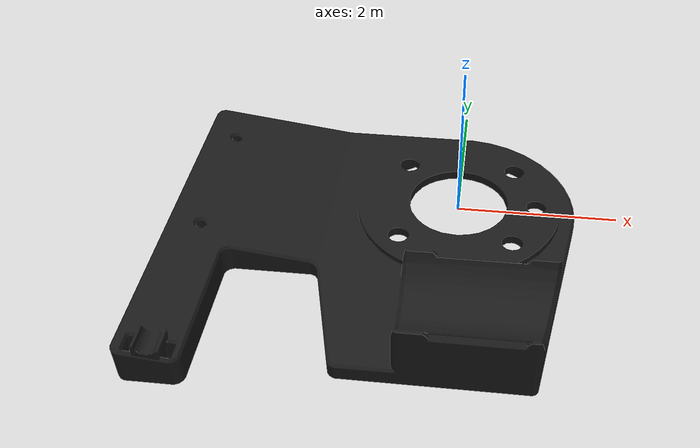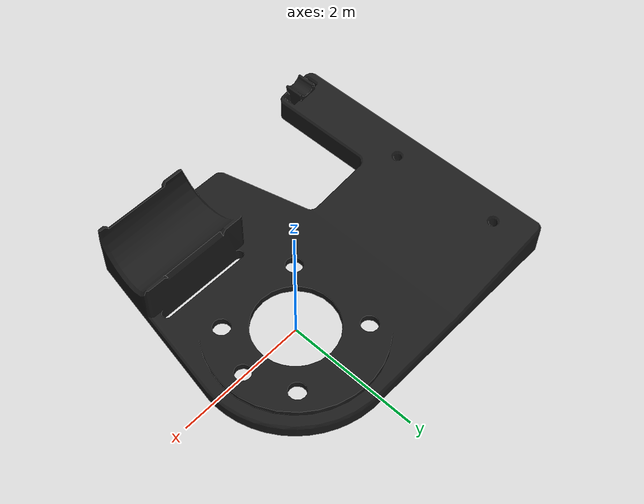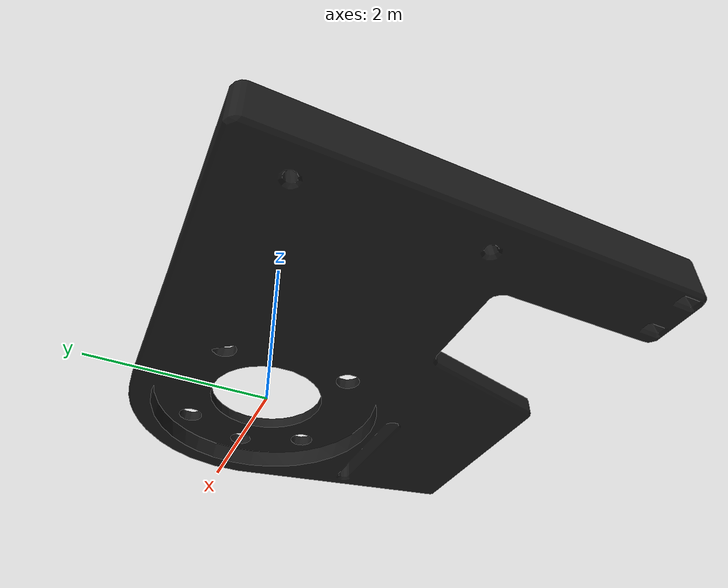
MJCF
<mujoco model="ich-005_realsense_cable_mount_corr">
  <default>
    <default class="visual">
      <geom group="2" type="mesh" contype="0" conaffinity="0"/>
    </default>
    <default class="collision">
      <geom group="3" type="mesh"/>
    </default>
  </default>
  <asset>
    <material name="mtl_ich-005_realsense_cable_mount_corr" specular="0.20000000000000004" shininess="1.0" rgba="0.10196078 0.10196078 0.10196078 1.0"/>
    <mesh file="ich-005_realsense_cable_mount_corr.obj"/>
  </asset>
  <worldbody>
    <body name="ich-005_realsense_cable_mount_corr">
      <geom material="mtl_ich-005_realsense_cable_mount_corr" mesh="ich-005_realsense_cable_mount_corr" class="visual"/>
      <geom mesh="ich-005_realsense_cable_mount_corr" class="collision"/>
    </body>
  </worldbody>
</mujoco>
